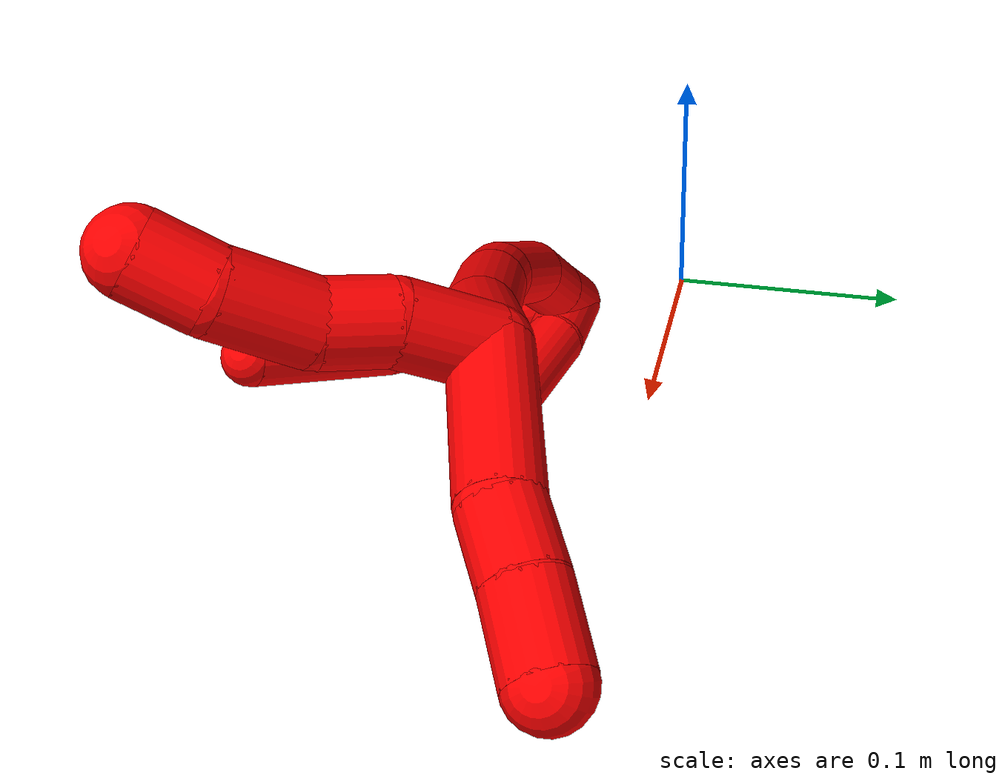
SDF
<sdf version="1.7">
 <world name="default">
  <model name="2">
   <static>0</static>
   <link name="2">
    <collision name="collision-cylinder-e_1_2_8">
     <pose>-0.001519 -0.037055 0.023218 1.01106 -0.034715 -0.019216</pose>
     <geometry><cylinder><radius>0.0125</radius><length>0.08751</length></cylinder></geometry>
     <surface>
      <friction><ode><mu>1.16</mu><mu2>1.16</mu2><slip1>0</slip1><slip2>0</slip2></ode></friction>
      <contact><ode><kp>1e+06</kp><kd>1</kd><max_vel>0</max_vel><min_depth>0.001</min_depth></ode></contact>
     </surface>
    </collision>
    <visual name="visual-cylinder-e_1_2_8">
     <pose>-0.001519 -0.037055 0.023218 1.01106 -0.034715 -0.019216</pose>
     <geometry><cylinder><radius>0.0125</radius><length>0.08751</length></cylinder></geometry>
     <material><ambient>1 0 0 1</ambient></material>
    </visual>
    <collision name="collision-cylinder-e_2_8_6">
     <pose>-0.006069 -0.095047 0.069431 0.738596 -0.097191 -0.037644</pose>
     <geometry><cylinder><radius>0.0125</radius><length>0.06249</length></cylinder></geometry>
     <surface>
      <friction><ode><mu>1.16</mu><mu2>1.16</mu2><slip1>0</slip1><slip2>0</slip2></ode></friction>
      <contact><ode><kp>1e+06</kp><kd>1</kd><max_vel>0</max_vel><min_depth>0.001</min_depth></ode></contact>
     </surface>
    </collision>
    <visual name="visual-cylinder-e_2_8_6">
     <pose>-0.006069 -0.095047 0.069431 0.738596 -0.097191 -0.037644</pose>
     <geometry><cylinder><radius>0.0125</radius><length>0.06249</length></cylinder></geometry>
     <material><ambient>1 0 0 1</ambient></material>
    </visual>
    <collision name="collision-cylinder-e_1_2_9">
     <pose>0.010414 -0.004619 0.014649 0.305435 0.595791 0.094444</pose>
     <geometry><cylinder><radius>0.0125</radius><length>0.037114</length></cylinder></geometry>
     <surface>
      <friction><ode><mu>1.16</mu><mu2>1.16</mu2><slip1>0</slip1><slip2>0</slip2></ode></friction>
      <contact><ode><kp>1e+06</kp><kd>1</kd><max_vel>0</max_vel><min_depth>0.001</min_depth></ode></contact>
     </surface>
    </collision>
    <visual name="visual-cylinder-e_1_2_9">
     <pose>0.010414 -0.004619 0.014649 0.305435 0.595791 0.094444</pose>
     <geometry><cylinder><radius>0.0125</radius><length>0.037114</length></cylinder></geometry>
     <material><ambient>1 0 0 1</ambient></material>
    </visual>
    <collision name="collision-cylinder-e_2_9_5">
     <pose>0.036631 -0.02262 0.052958 0.514731 0.526615 0.141664</pose>
     <geometry><cylinder><radius>0.0125</radius><length>0.062886</length></cylinder></geometry>
     <surface>
      <friction><ode><mu>1.16</mu><mu2>1.16</mu2><slip1>0</slip1><slip2>0</slip2></ode></friction>
      <contact><ode><kp>1e+06</kp><kd>1</kd><max_vel>0</max_vel><min_depth>0.001</min_depth></ode></contact>
     </surface>
    </collision>
    <visual name="visual-cylinder-e_2_9_5">
     <pose>0.036631 -0.02262 0.052958 0.514731 0.526615 0.141664</pose>
     <geometry><cylinder><radius>0.0125</radius><length>0.062886</length></cylinder></geometry>
     <material><ambient>1 0 0 1</ambient></material>
    </visual>
    <collision name="collision-cylinder-e_1_2_10">
     <pose>0.000325 -0.000217 0.016667 0.013043 0.019476 0.000127</pose>
     <geometry><cylinder><radius>0.0125</radius><length>0.033343</length></cylinder></geometry>
     <surface>
      <friction><ode><mu>1.16</mu><mu2>1.16</mu2><slip1>0</slip1><slip2>0</slip2></ode></friction>
      <contact><ode><kp>1e+06</kp><kd>1</kd><max_vel>0</max_vel><min_depth>0.001</min_depth></ode></contact>
     </surface>
    </collision>
    <visual name="visual-cylinder-e_1_2_10">
     <pose>0.000325 -0.000217 0.016667 0.013043 0.019476 0.000127</pose>
     <geometry><cylinder><radius>0.0125</radius><length>0.033343</length></cylinder></geometry>
     <material><ambient>1 0 0 1</ambient></material>
    </visual>
    <collision name="collision-cylinder-e_2_10_11">
     <pose>0.001783 8.6e-05 0.053705 -0.025552 0.055562 -0.00071</pose>
     <geometry><cylinder><radius>0.0125</radius><length>0.040819</length></cylinder></geometry>
     <surface>
      <friction><ode><mu>1.16</mu><mu2>1.16</mu2><slip1>0</slip1><slip2>0</slip2></ode></friction>
      <contact><ode><kp>1e+06</kp><kd>1</kd><max_vel>0</max_vel><min_depth>0.001</min_depth></ode></contact>
     </surface>
    </collision>
    <visual name="visual-cylinder-e_2_10_11">
     <pose>0.001783 8.6e-05 0.053705 -0.025552 0.055562 -0.00071</pose>
     <geometry><cylinder><radius>0.0125</radius><length>0.040819</length></cylinder></geometry>
     <material><ambient>1 0 0 1</ambient></material>
    </visual>
    <collision name="collision-cylinder-e_3_11_12">
     <pose>0.009929 -0.000424 0.102581 0.036124 0.241074 0.004376</pose>
     <geometry><cylinder><radius>0.0125</radius><length>0.058744</length></cylinder></geometry>
     <surface>
      <friction><ode><mu>1.16</mu><mu2>1.16</mu2><slip1>0</slip1><slip2>0</slip2></ode></friction>
      <contact><ode><kp>1e+06</kp><kd>1</kd><max_vel>0</max_vel><min_depth>0.001</min_depth></ode></contact>
     </surface>
    </collision>
    <visual name="visual-cylinder-e_3_11_12">
     <pose>0.009929 -0.000424 0.102581 0.036124 0.241074 0.004376</pose>
     <geometry><cylinder><radius>0.0125</radius><length>0.058744</length></cylinder></geometry>
     <material><ambient>1 0 0 1</ambient></material>
    </visual>
    <collision name="collision-cylinder-e_4_12_13">
     <pose>0.02227 -0.000579 0.144741 -0.063973 0.371369 -0.012021</pose>
     <geometry><cylinder><radius>0.0125</radius><length>0.029371</length></cylinder></geometry>
     <surface>
      <friction><ode><mu>1.16</mu><mu2>1.16</mu2><slip1>0</slip1><slip2>0</slip2></ode></friction>
      <contact><ode><kp>1e+06</kp><kd>1</kd><max_vel>0</max_vel><min_depth>0.001</min_depth></ode></contact>
     </surface>
    </collision>
    <visual name="visual-cylinder-e_4_12_13">
     <pose>0.02227 -0.000579 0.144741 -0.063973 0.371369 -0.012021</pose>
     <geometry><cylinder><radius>0.0125</radius><length>0.029371</length></cylinder></geometry>
     <material><ambient>1 0 0 1</ambient></material>
    </visual>
    <collision name="collision-cylinder-e_5_13_14">
     <pose>0.041459 0.002999 0.189367 -0.087061 0.419375 -0.018539</pose>
     <geometry><cylinder><radius>0.0125</radius><length>0.068072</length></cylinder></geometry>
     <surface>
      <friction><ode><mu>1.16</mu><mu2>1.16</mu2><slip1>0</slip1><slip2>0</slip2></ode></friction>
      <contact><ode><kp>1e+06</kp><kd>1</kd><max_vel>0</max_vel><min_depth>0.001</min_depth></ode></contact>
     </surface>
    </collision>
    <visual name="visual-cylinder-e_5_13_14">
     <pose>0.041459 0.002999 0.189367 -0.087061 0.419375 -0.018539</pose>
     <geometry><cylinder><radius>0.0125</radius><length>0.068072</length></cylinder></geometry>
     <material><ambient>1 0 0 1</ambient></material>
    </visual>
    <collision name="collision-cylinder-e_6_14_1">
     <pose>0.069683 0.012083 0.251412 -0.202537 0.42518 -0.043861</pose>
     <geometry><cylinder><radius>0.0125</radius><length>0.06965</length></cylinder></geometry>
     <surface>
      <friction><ode><mu>1.16</mu><mu2>1.16</mu2><slip1>0</slip1><slip2>0</slip2></ode></friction>
      <contact><ode><kp>1e+06</kp><kd>1</kd><max_vel>0</max_vel><min_depth>0.001</min_depth></ode></contact>
     </surface>
    </collision>
    <visual name="visual-cylinder-e_6_14_1">
     <pose>0.069683 0.012083 0.251412 -0.202537 0.42518 -0.043861</pose>
     <geometry><cylinder><radius>0.0125</radius><length>0.06965</length></cylinder></geometry>
     <material><ambient>1 0 0 1</ambient></material>
    </visual>
    <collision name="collision-cylinder-e_1_1_15">
     <pose>0.07804 0.009748 0.292557 0.713533 -0.423765 -0.160009</pose>
     <geometry><cylinder><radius>0.0125</radius><length>0.029222</length></cylinder></geometry>
     <surface>
      <friction><ode><mu>1.16</mu><mu2>1.16</mu2><slip1>0</slip1><slip2>0</slip2></ode></friction>
      <contact><ode><kp>1e+06</kp><kd>1</kd><max_vel>0</max_vel><min_depth>0.001</min_depth></ode></contact>
     </surface>
    </collision>
    <visual name="visual-cylinder-e_1_1_15">
     <pose>0.07804 0.009748 0.292557 0.713533 -0.423765 -0.160009</pose>
     <geometry><cylinder><radius>0.0125</radius><length>0.029222</length></cylinder></geometry>
     <material><ambient>1 0 0 1</ambient></material>
    </visual>
    <collision name="collision-cylinder-e_2_15_16">
     <pose>0.069814 -0.007131 0.308732 0.928576 -0.214195 -0.107577</pose>
     <geometry><cylinder><radius>0.0125</radius><length>0.020861</length></cylinder></geometry>
     <surface>
      <friction><ode><mu>1.16</mu><mu2>1.16</mu2><slip1>0</slip1><slip2>0</slip2></ode></friction>
      <contact><ode><kp>1e+06</kp><kd>1</kd><max_vel>0</max_vel><min_depth>0.001</min_depth></ode></contact>
     </surface>
    </collision>
    <visual name="visual-cylinder-e_2_15_16">
     <pose>0.069814 -0.007131 0.308732 0.928576 -0.214195 -0.107577</pose>
     <geometry><cylinder><radius>0.0125</radius><length>0.020861</length></cylinder></geometry>
     <material><ambient>1 0 0 1</ambient></material>
    </visual>
    <collision name="collision-cylinder-e_3_16_17">
     <pose>0.061302 -0.023281 0.324974 0.667433 -0.453785 -0.159735</pose>
     <geometry><cylinder><radius>0.0125</radius><length>0.02872</length></cylinder></geometry>
     <surface>
      <friction><ode><mu>1.16</mu><mu2>1.16</mu2><slip1>0</slip1><slip2>0</slip2></ode></friction>
      <contact><ode><kp>1e+06</kp><kd>1</kd><max_vel>0</max_vel><min_depth>0.001</min_depth></ode></contact>
     </surface>
    </collision>
    <visual name="visual-cylinder-e_3_16_17">
     <pose>0.061302 -0.023281 0.324974 0.667433 -0.453785 -0.159735</pose>
     <geometry><cylinder><radius>0.0125</radius><length>0.02872</length></cylinder></geometry>
     <material><ambient>1 0 0 1</ambient></material>
    </visual>
    <collision name="collision-cylinder-e_4_17_4">
     <pose>0.048126 -0.037198 0.340573 0.826233 -0.706671 -0.320559</pose>
     <geometry><cylinder><radius>0.0125</radius><length>0.021197</length></cylinder></geometry>
     <surface>
      <friction><ode><mu>1.16</mu><mu2>1.16</mu2><slip1>0</slip1><slip2>0</slip2></ode></friction>
      <contact><ode><kp>1e+06</kp><kd>1</kd><max_vel>0</max_vel><min_depth>0.001</min_depth></ode></contact>
     </surface>
    </collision>
    <visual name="visual-cylinder-e_4_17_4">
     <pose>0.048126 -0.037198 0.340573 0.826233 -0.706671 -0.320559</pose>
     <geometry><cylinder><radius>0.0125</radius><length>0.021197</length></cylinder></geometry>
     <material><ambient>1 0 0 1</ambient></material>
    </visual>
    <collision name="collision-cylinder-e_1_1_18">
     <pose>0.106743 0.014793 0.294127 0.305561 1.07739 0.183537</pose>
     <geometry><cylinder><radius>0.0125</radius><length>0.051537</length></cylinder></geometry>
     <surface>
      <friction><ode><mu>1.16</mu><mu2>1.16</mu2><slip1>0</slip1><slip2>0</slip2></ode></friction>
      <contact><ode><kp>1e+06</kp><kd>1</kd><max_vel>0</max_vel><min_depth>0.001</min_depth></ode></contact>
     </surface>
    </collision>
    <visual name="visual-cylinder-e_1_1_18">
     <pose>0.106743 0.014793 0.294127 0.305561 1.07739 0.183537</pose>
     <geometry><cylinder><radius>0.0125</radius><length>0.051537</length></cylinder></geometry>
     <material><ambient>1 0 0 1</ambient></material>
    </visual>
    <collision name="collision-cylinder-e_2_18_19">
     <pose>0.140199 0.011215 0.309075 -0.028008 1.27242 -0.02069</pose>
     <geometry><cylinder><radius>0.0125</radius><length>0.022518</length></cylinder></geometry>
     <surface>
      <friction><ode><mu>1.16</mu><mu2>1.16</mu2><slip1>0</slip1><slip2>0</slip2></ode></friction>
      <contact><ode><kp>1e+06</kp><kd>1</kd><max_vel>0</max_vel><min_depth>0.001</min_depth></ode></contact>
     </surface>
    </collision>
    <visual name="visual-cylinder-e_2_18_19">
     <pose>0.140199 0.011215 0.309075 -0.028008 1.27242 -0.02069</pose>
     <geometry><cylinder><radius>0.0125</radius><length>0.022518</length></cylinder></geometry>
     <material><ambient>1 0 0 1</ambient></material>
    </visual>
    <collision name="collision-cylinder-e_3_19_3">
     <pose>0.163475 0.010538 0.315714 0.227131 1.30418 0.173726</pose>
     <geometry><cylinder><radius>0.0125</radius><length>0.025945</length></cylinder></geometry>
     <surface>
      <friction><ode><mu>1.16</mu><mu2>1.16</mu2><slip1>0</slip1><slip2>0</slip2></ode></friction>
      <contact><ode><kp>1e+06</kp><kd>1</kd><max_vel>0</max_vel><min_depth>0.001</min_depth></ode></contact>
     </surface>
    </collision>
    <visual name="visual-cylinder-e_3_19_3">
     <pose>0.163475 0.010538 0.315714 0.227131 1.30418 0.173726</pose>
     <geometry><cylinder><radius>0.0125</radius><length>0.025945</length></cylinder></geometry>
     <material><ambient>1 0 0 1</ambient></material>
    </visual>
    <collision name="collision-sphere-3">
     <pose>0.175989 0.009768 0.319044 0 -0 0</pose>
     <geometry><sphere><radius>0.0125</radius></sphere></geometry>
     <surface>
      <friction><ode><mu>1.16</mu><mu2>1.16</mu2><slip1>0</slip1><slip2>0</slip2></ode></friction>
      <contact><ode><kp>1e+06</kp><kd>1</kd><max_vel>0</max_vel><min_depth>0.001</min_depth></ode></contact>
     </surface>
    </collision>
    <visual name="visual-sphere-3">
     <pose>0.175989 0.009768 0.319044 0 -0 0</pose>
     <geometry><sphere><radius>0.0125</radius></sphere></geometry>
     <material><ambient>1 0 0 1</ambient></material>
    </visual>
    <collision name="collision-sphere-19">
     <pose>0.15096 0.011307 0.312384 0 -0 0</pose>
     <geometry><sphere><radius>0.0125</radius></sphere></geometry>
     <surface>
      <friction><ode><mu>1.16</mu><mu2>1.16</mu2><slip1>0</slip1><slip2>0</slip2></ode></friction>
      <contact><ode><kp>1e+06</kp><kd>1</kd><max_vel>0</max_vel><min_depth>0.001</min_depth></ode></contact>
     </surface>
    </collision>
    <visual name="visual-sphere-19">
     <pose>0.15096 0.011307 0.312384 0 -0 0</pose>
     <geometry><sphere><radius>0.0125</radius></sphere></geometry>
     <material><ambient>1 0 0 1</ambient></material>
    </visual>
    <collision name="collision-sphere-10">
     <pose>0.000649 -0.000435 0.033334 0 -0 0</pose>
     <geometry><sphere><radius>0.0125</radius></sphere></geometry>
     <surface>
      <friction><ode><mu>1.16</mu><mu2>1.16</mu2><slip1>0</slip1><slip2>0</slip2></ode></friction>
      <contact><ode><kp>1e+06</kp><kd>1</kd><max_vel>0</max_vel><min_depth>0.001</min_depth></ode></contact>
     </surface>
    </collision>
    <visual name="visual-sphere-10">
     <pose>0.000649 -0.000435 0.033334 0 -0 0</pose>
     <geometry><sphere><radius>0.0125</radius></sphere></geometry>
     <material><ambient>1 0 0 1</ambient></material>
    </visual>
    <collision name="collision-sphere-5">
     <pose>0.052434 -0.036002 0.076619 0 -0 0</pose>
     <geometry><sphere><radius>0.0125</radius></sphere></geometry>
     <surface>
      <friction><ode><mu>1.16</mu><mu2>1.16</mu2><slip1>0</slip1><slip2>0</slip2></ode></friction>
      <contact><ode><kp>1e+06</kp><kd>1</kd><max_vel>0</max_vel><min_depth>0.001</min_depth></ode></contact>
     </surface>
    </collision>
    <visual name="visual-sphere-5">
     <pose>0.052434 -0.036002 0.076619 0 -0 0</pose>
     <geometry><sphere><radius>0.0125</radius></sphere></geometry>
     <material><ambient>1 0 0 1</ambient></material>
    </visual>
    <collision name="collision-sphere-6">
     <pose>-0.009101 -0.115984 0.092425 0 -0 0</pose>
     <geometry><sphere><radius>0.0125</radius></sphere></geometry>
     <surface>
      <friction><ode><mu>1.16</mu><mu2>1.16</mu2><slip1>0</slip1><slip2>0</slip2></ode></friction>
      <contact><ode><kp>1e+06</kp><kd>1</kd><max_vel>0</max_vel><min_depth>0.001</min_depth></ode></contact>
     </surface>
    </collision>
    <visual name="visual-sphere-6">
     <pose>-0.009101 -0.115984 0.092425 0 -0 0</pose>
     <geometry><sphere><radius>0.0125</radius></sphere></geometry>
     <material><ambient>1 0 0 1</ambient></material>
    </visual>
    <collision name="collision-sphere-9">
     <pose>0.020827 -0.009238 0.029298 0 -0 0</pose>
     <geometry><sphere><radius>0.0125</radius></sphere></geometry>
     <surface>
      <friction><ode><mu>1.16</mu><mu2>1.16</mu2><slip1>0</slip1><slip2>0</slip2></ode></friction>
      <contact><ode><kp>1e+06</kp><kd>1</kd><max_vel>0</max_vel><min_depth>0.001</min_depth></ode></contact>
     </surface>
    </collision>
    <visual name="visual-sphere-9">
     <pose>0.020827 -0.009238 0.029298 0 -0 0</pose>
     <geometry><sphere><radius>0.0125</radius></sphere></geometry>
     <material><ambient>1 0 0 1</ambient></material>
    </visual>
    <collision name="collision-sphere-2">
     <geometry><sphere><radius>0.0125</radius></sphere></geometry>
     <surface>
      <friction><ode><mu>1.16</mu><mu2>1.16</mu2><slip1>0</slip1><slip2>0</slip2></ode></friction>
      <contact><ode><kp>1e+06</kp><kd>1</kd><max_vel>0</max_vel><min_depth>0.001</min_depth></ode></contact>
     </surface>
    </collision>
    <visual name="visual-sphere-2">
     <geometry><sphere><radius>0.0125</radius></sphere></geometry>
     <material><ambient>1 0 0 1</ambient></material>
    </visual>
    <collision name="collision-sphere-8">
     <pose>-0.003037 -0.074111 0.046437 0 -0 0</pose>
     <geometry><sphere><radius>0.0125</radius></sphere></geometry>
     <surface>
      <friction><ode><mu>1.16</mu><mu2>1.16</mu2><slip1>0</slip1><slip2>0</slip2></ode></friction>
      <contact><ode><kp>1e+06</kp><kd>1</kd><max_vel>0</max_vel><min_depth>0.001</min_depth></ode></contact>
     </surface>
    </collision>
    <visual name="visual-sphere-8">
     <pose>-0.003037 -0.074111 0.046437 0 -0 0</pose>
     <geometry><sphere><radius>0.0125</radius></sphere></geometry>
     <material><ambient>1 0 0 1</ambient></material>
    </visual>
    <collision name="collision-sphere-11">
     <pose>0.002916 0.000606 0.074077 0 -0 0</pose>
     <geometry><sphere><radius>0.0125</radius></sphere></geometry>
     <surface>
      <friction><ode><mu>1.16</mu><mu2>1.16</mu2><slip1>0</slip1><slip2>0</slip2></ode></friction>
      <contact><ode><kp>1e+06</kp><kd>1</kd><max_vel>0</max_vel><min_depth>0.001</min_depth></ode></contact>
     </surface>
    </collision>
    <visual name="visual-sphere-11">
     <pose>0.002916 0.000606 0.074077 0 -0 0</pose>
     <geometry><sphere><radius>0.0125</radius></sphere></geometry>
     <material><ambient>1 0 0 1</ambient></material>
    </visual>
    <collision name="collision-sphere-12">
     <pose>0.016941 -0.001454 0.131085 0 -0 0</pose>
     <geometry><sphere><radius>0.0125</radius></sphere></geometry>
     <surface>
      <friction><ode><mu>1.16</mu><mu2>1.16</mu2><slip1>0</slip1><slip2>0</slip2></ode></friction>
      <contact><ode><kp>1e+06</kp><kd>1</kd><max_vel>0</max_vel><min_depth>0.001</min_depth></ode></contact>
     </surface>
    </collision>
    <visual name="visual-sphere-12">
     <pose>0.016941 -0.001454 0.131085 0 -0 0</pose>
     <geometry><sphere><radius>0.0125</radius></sphere></geometry>
     <material><ambient>1 0 0 1</ambient></material>
    </visual>
    <collision name="collision-sphere-13">
     <pose>0.0276 0.000296 0.158398 0 -0 0</pose>
     <geometry><sphere><radius>0.0125</radius></sphere></geometry>
     <surface>
      <friction><ode><mu>1.16</mu><mu2>1.16</mu2><slip1>0</slip1><slip2>0</slip2></ode></friction>
      <contact><ode><kp>1e+06</kp><kd>1</kd><max_vel>0</max_vel><min_depth>0.001</min_depth></ode></contact>
     </surface>
    </collision>
    <visual name="visual-sphere-13">
     <pose>0.0276 0.000296 0.158398 0 -0 0</pose>
     <geometry><sphere><radius>0.0125</radius></sphere></geometry>
     <material><ambient>1 0 0 1</ambient></material>
    </visual>
    <collision name="collision-sphere-14">
     <pose>0.055318 0.005702 0.220336 0 -0 0</pose>
     <geometry><sphere><radius>0.0125</radius></sphere></geometry>
     <surface>
      <friction><ode><mu>1.16</mu><mu2>1.16</mu2><slip1>0</slip1><slip2>0</slip2></ode></friction>
      <contact><ode><kp>1e+06</kp><kd>1</kd><max_vel>0</max_vel><min_depth>0.001</min_depth></ode></contact>
     </surface>
    </collision>
    <visual name="visual-sphere-14">
     <pose>0.055318 0.005702 0.220336 0 -0 0</pose>
     <geometry><sphere><radius>0.0125</radius></sphere></geometry>
     <material><ambient>1 0 0 1</ambient></material>
    </visual>
    <collision name="collision-sphere-1">
     <pose>0.084048 0.018465 0.282488 0 -0 0</pose>
     <geometry><sphere><radius>0.0125</radius></sphere></geometry>
     <surface>
      <friction><ode><mu>1.16</mu><mu2>1.16</mu2><slip1>0</slip1><slip2>0</slip2></ode></friction>
      <contact><ode><kp>1e+06</kp><kd>1</kd><max_vel>0</max_vel><min_depth>0.001</min_depth></ode></contact>
     </surface>
    </collision>
    <visual name="visual-sphere-1">
     <pose>0.084048 0.018465 0.282488 0 -0 0</pose>
     <geometry><sphere><radius>0.0125</radius></sphere></geometry>
     <material><ambient>1 0 0 1</ambient></material>
    </visual>
    <collision name="collision-sphere-18">
     <pose>0.129438 0.011122 0.305767 0 -0 0</pose>
     <geometry><sphere><radius>0.0125</radius></sphere></geometry>
     <surface>
      <friction><ode><mu>1.16</mu><mu2>1.16</mu2><slip1>0</slip1><slip2>0</slip2></ode></friction>
      <contact><ode><kp>1e+06</kp><kd>1</kd><max_vel>0</max_vel><min_depth>0.001</min_depth></ode></contact>
     </surface>
    </collision>
    <visual name="visual-sphere-18">
     <pose>0.129438 0.011122 0.305767 0 -0 0</pose>
     <geometry><sphere><radius>0.0125</radius></sphere></geometry>
     <material><ambient>1 0 0 1</ambient></material>
    </visual>
    <collision name="collision-sphere-15">
     <pose>0.072032 0.001031 0.302627 0 -0 0</pose>
     <geometry><sphere><radius>0.0125</radius></sphere></geometry>
     <surface>
      <friction><ode><mu>1.16</mu><mu2>1.16</mu2><slip1>0</slip1><slip2>0</slip2></ode></friction>
      <contact><ode><kp>1e+06</kp><kd>1</kd><max_vel>0</max_vel><min_depth>0.001</min_depth></ode></contact>
     </surface>
    </collision>
    <visual name="visual-sphere-15">
     <pose>0.072032 0.001031 0.302627 0 -0 0</pose>
     <geometry><sphere><radius>0.0125</radius></sphere></geometry>
     <material><ambient>1 0 0 1</ambient></material>
    </visual>
    <collision name="collision-sphere-16">
     <pose>0.067597 -0.015292 0.314837 0 -0 0</pose>
     <geometry><sphere><radius>0.0125</radius></sphere></geometry>
     <surface>
      <friction><ode><mu>1.16</mu><mu2>1.16</mu2><slip1>0</slip1><slip2>0</slip2></ode></friction>
      <contact><ode><kp>1e+06</kp><kd>1</kd><max_vel>0</max_vel><min_depth>0.001</min_depth></ode></contact>
     </surface>
    </collision>
    <visual name="visual-sphere-16">
     <pose>0.067597 -0.015292 0.314837 0 -0 0</pose>
     <geometry><sphere><radius>0.0125</radius></sphere></geometry>
     <material><ambient>1 0 0 1</ambient></material>
    </visual>
    <collision name="collision-sphere-17">
     <pose>0.055007 -0.03127 0.335111 0 -0 0</pose>
     <geometry><sphere><radius>0.0125</radius></sphere></geometry>
     <surface>
      <friction><ode><mu>1.16</mu><mu2>1.16</mu2><slip1>0</slip1><slip2>0</slip2></ode></friction>
      <contact><ode><kp>1e+06</kp><kd>1</kd><max_vel>0</max_vel><min_depth>0.001</min_depth></ode></contact>
     </surface>
    </collision>
    <visual name="visual-sphere-17">
     <pose>0.055007 -0.03127 0.335111 0 -0 0</pose>
     <geometry><sphere><radius>0.0125</radius></sphere></geometry>
     <material><ambient>1 0 0 1</ambient></material>
    </visual>
    <collision name="collision-sphere-4">
     <pose>0.041244 -0.043125 0.346035 0 -0 0</pose>
     <geometry><sphere><radius>0.0125</radius></sphere></geometry>
     <surface>
      <friction><ode><mu>1.16</mu><mu2>1.16</mu2><slip1>0</slip1><slip2>0</slip2></ode></friction>
      <contact><ode><kp>1e+06</kp><kd>1</kd><max_vel>0</max_vel><min_depth>0.001</min_depth></ode></contact>
     </surface>
    </collision>
    <visual name="visual-sphere-4">
     <pose>0.041244 -0.043125 0.346035 0 -0 0</pose>
     <geometry><sphere><radius>0.0125</radius></sphere></geometry>
     <material><ambient>1 0 0 1</ambient></material>
    </visual>
    <inertial>
     <pose>0.040789 -0.013078 0.15403 0 -0 0</pose>
     <mass>0.75</mass>
     <inertia>
      <ixx>0.000223</ixx>
      <ixy>0</ixy>
      <ixz>0</ixz>
      <iyy>0.000176</iyy>
      <iyz>0</iyz>
      <izz>6.7e-05</izz>
     </inertia>
    </inertial>
   </link>
   <pose>0.046568 -0.04302 0.011474 0.567401 0.66068 0.673884</pose>
  </model>
 </world>
</sdf>
